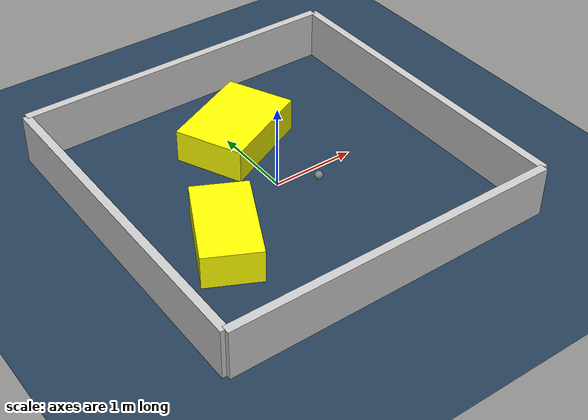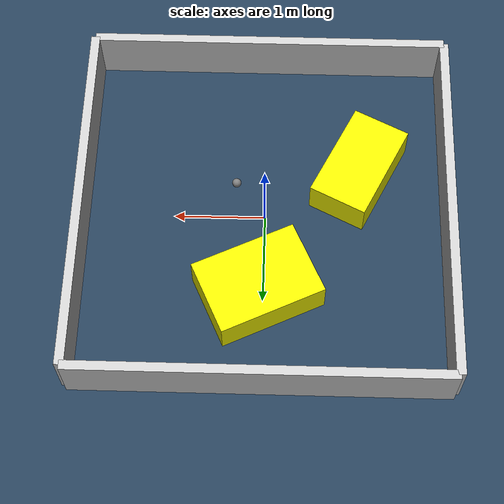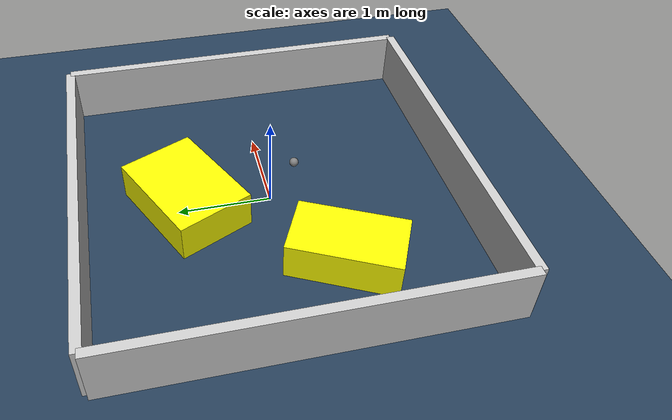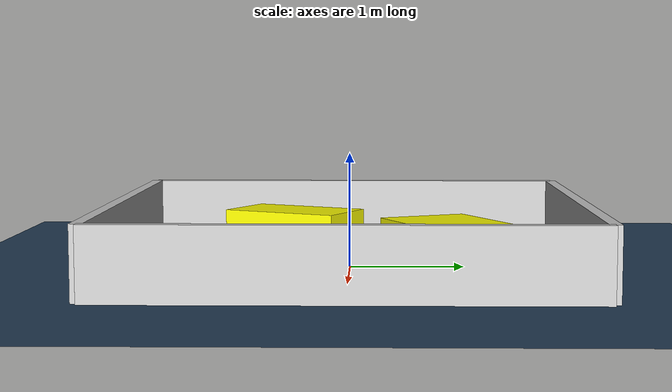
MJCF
<?xml version="1.0" ?>
<mujoco model="generated_environment">
  <option timestep="0.01" integrator="RK4" cone="elliptic"/>
  <default>
    <geom density="1"/>
  </default>
  <asset>
    <texture builtin="gradient" height="3072" rgb1="0.3 0.5 0.7" rgb2="0 0 0" type="skybox" width="512"/>
    <texture builtin="checker" height="300" mark="edge" markrgb="0.8 0.8 0.8" name="groundplane" rgb1="0.2 0.3 0.4" rgb2="0.1 0.2 0.3" type="2d" width="300"/>
    <material name="groundplane" reflectance="0.2" texrepeat="5 5" texture="groundplane" texuniform="true"/>
    <material name="robot" rgba="0.0 1.0 0.0 1"/>
  </asset>
  <worldbody>
    <light dir="0 0 -1" directional="true" pos="0 0 1.5"/>
    <geom condim="4" friction="1.0 0.005 0.001" material="groundplane" name="floor" size="0 0 0.05" type="plane"/>
    <body name="walls">
      <geom name="wall_1" condim="4" pos="-2.0 0.0 0.3" rgba="0.800000011920929 0.800000011920929 0.800000011920929 1.0" size="0.05 2.0 0.3" type="box"/>
      <geom name="wall_2" condim="4" pos="2.0 0.0 0.3" rgba="0.800000011920929 0.800000011920929 0.800000011920929 1.0" size="0.05 2.0 0.3" type="box"/>
      <geom name="wall_3" condim="4" pos="0.0 -2.0 0.3" rgba="0.800000011920929 0.800000011920929 0.800000011920929 1.0" size="2.0 0.05 0.3" type="box"/>
      <geom name="wall_4" condim="4" pos="0.0 2.0 0.3" rgba="0.800000011920929 0.800000011920929 0.800000011920929 1.0" size="2.0 0.05 0.3" type="box"/>
    </body>
    <body name="robot">
      <joint name="joint_x" type="slide" pos="0 0 0" axis="1 0 0"/>
      <joint name="joint_y" type="slide" pos="0 0 0" axis="0 1 0"/>
      <geom name="robot" type="sphere" pos="0.3212987802168348 -0.33573697628955346 0.2" size="0.05" mass="5." friction="1.0 0.005 0.0001" condim="4"/>
      <site name="sensor_ball"/>
    </body>
    <body name="obstacle_1_movable">
      <geom name="obstacle_1_movable" condim="4" pos="0.05134057717004481 0.8998097931839228 0.2" euler="0 0 25.248371816163914" friction="1.0 0.005 0.001" rgba="1 1 0 1" size="0.5908031707248612 0.417498915684968 0.2" type="box" mass="0.1"/>
      <joint type="free"/>
    </body>
    <body name="obstacle_2_movable">
      <geom name="obstacle_2_movable" condim="4" pos="-1.0353275040040888 -0.5437023453855763 0.2" euler="0 0 63.54168111117103" friction="1.0 0.005 0.001" rgba="1 1 0 1" size="0.5673190064305307 0.32757282479792754 0.2" type="box" mass="0.1"/>
      <joint type="free"/>
    </body>
  </worldbody>
  <actuator>
    <motor name="actuator_x" joint="joint_x" gear="1" ctrlrange="-1 1"/>
    <motor name="actuator_y" joint="joint_y" gear="1" ctrlrange="-1 1"/>
  </actuator>
</mujoco>
